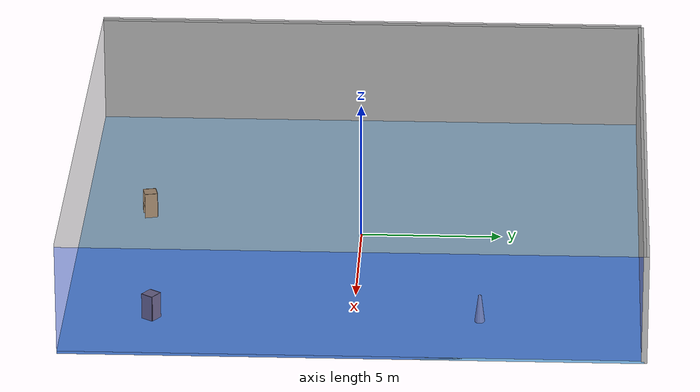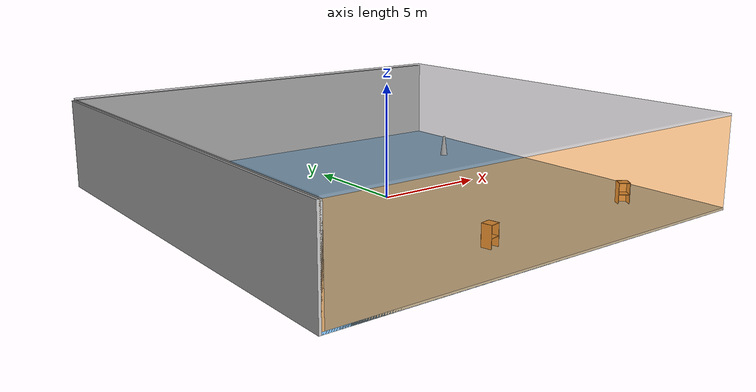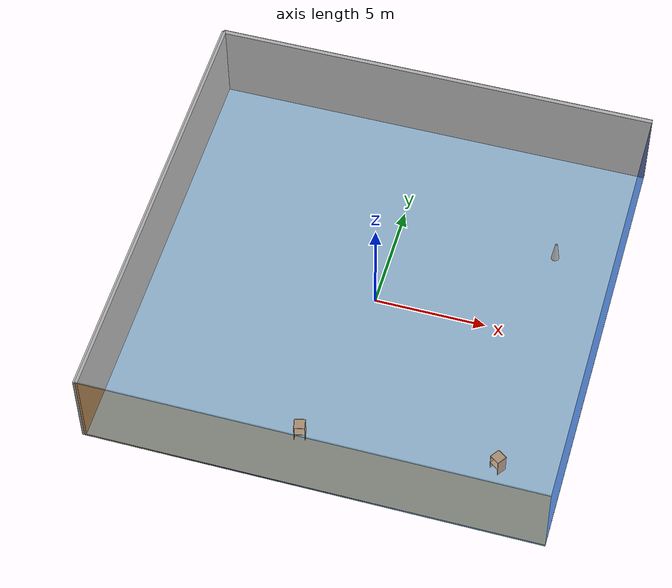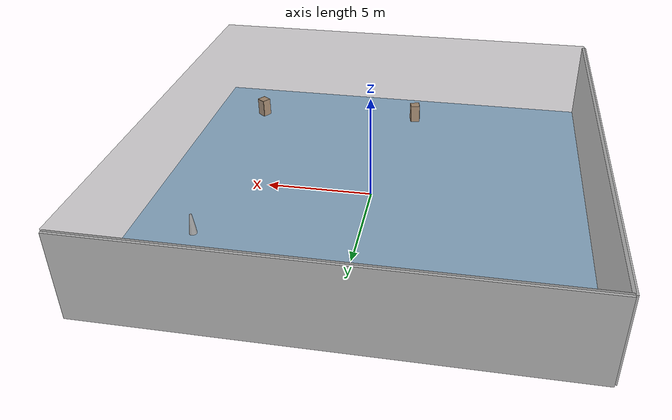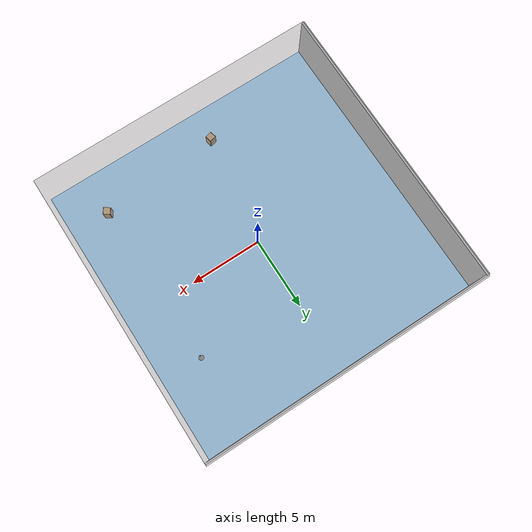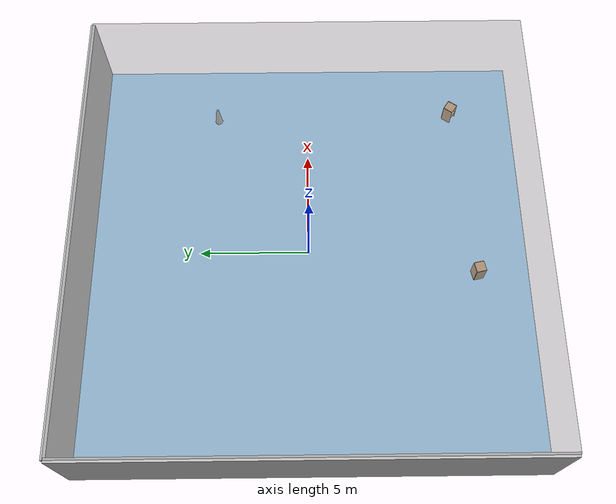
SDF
<sdf version="1.4">
 <world name="default">
  <physics type="ode">
   <max_step_size>0.001</max_step_size>
   <real_time_factor>1</real_time_factor>
   <real_time_update_rate>1000</real_time_update_rate>
   <gravity>0 0 -9.8</gravity>
  </physics>
  <scene><ambient>0.4 0.4 0.4 1</ambient><background>0.7 0.7 0.7 1</background><shadows>1</shadows></scene>
  <model name="Surrounding">
   <static>1</static>
   <link name="Ceiling">
    <collision name="Ceiling_Collision"><geometry><box><size>20 20 0.1</size></box></geometry></collision>
    <visual name="Ceiling_Visual">
     <geometry><box><size>20 20 0.1</size></box></geometry>
     <material>
      <script><uri>file://media/materials/scripts/gazebo.material</uri><name>Gazebo/GreyTransparent</name></script>
     </material>
    </visual>
    <pose>0 0 4.05 0 0 0</pose>
   </link>
   <link name="Wall_South">
    <collision name="Wall_South_Collision">
     <geometry><box><size>20 0 4</size></box></geometry>
     <pose>0 0 2 0 -0 0</pose>
    </collision>
    <visual name="Wall_South_Visual">
     <pose>0 0 2 0 -0 0</pose>
     <geometry><box><size>20 0 4</size></box></geometry>
     <material>
      <script>
       <uri>file://media/materials/scripts/gazebo.material</uri>
       <name>Gazebo/OrangeTransparent</name>
      </script>
     </material>
    </visual>
    <velocity_decay><linear>0</linear><angular>0</angular></velocity_decay>
    <pose>0 -10 0 0 -0 0</pose>
   </link>
   <link name="Wall_East">
    <collision name="Wall_21_Collision">
     <geometry><box><size>20 0 4</size></box></geometry>
     <pose>0 0 2 0 -0 0</pose>
    </collision>
    <visual name="Wall_21_Visual">
     <pose>0 0 2 0 -0 0</pose>
     <geometry><box><size>20 0 4</size></box></geometry>
     <material>
      <script><uri>file://media/materials/scripts/gazebo.material</uri><name>Gazebo/BlueTransparent</name></script>
     </material>
    </visual>
    <velocity_decay><linear>0</linear><angular>0</angular></velocity_decay>
    <pose>10 0 0 0 -0 1.5708</pose>
   </link>
   <link name="Wall_North">
    <collision name="Wall_22_Collision">
     <geometry><box><size>20 0.2 4</size></box></geometry>
     <pose>0 0 2 0 -0 0</pose>
    </collision>
    <visual name="Wall_22_Visual">
     <pose>0 0 2 0 -0 0</pose>
     <geometry><box><size>20 0.2 4</size></box></geometry>
     <material>
      <script><uri>file://media/materials/scripts/gazebo.material</uri><name>Gazebo/CloudySky</name></script>
     </material>
    </visual>
    <velocity_decay><linear>0</linear><angular>0</angular></velocity_decay>
    <pose>0 10 0 0 -0 0</pose>
   </link>
   <link name="Wall_West">
    <collision name="Wall_23_Collision">
     <geometry><box><size>20 0.2 4</size></box></geometry>
     <pose>0 0 2 0 -0 0</pose>
    </collision>
    <visual name="Wall_23_Visual">
     <pose>0 0 2 0 -0 0</pose>
     <geometry><box><size>20 0.2 4</size></box></geometry>
     <material>
      <script><uri>file://media/materials/scripts/gazebo.material</uri><name>Gazebo/PioneerBody</name></script>
     </material>
    </visual>
    <velocity_decay><linear>0</linear><angular>0</angular></velocity_decay>
    <pose>-10 0 0 0 0 -1.5708</pose>
   </link>
   <link name="Ground_link">
    <collision name="collision">
     <pose>0 0 .05 0 -0 0</pose>
     <geometry><box><size>20 20 0.1</size></box></geometry>
    </collision>
    <visual name="visual">
     <pose>0 0 .05 0 -0 0</pose>
     <geometry><box><size>20 20 0.1</size></box></geometry>
     <material>
      <script><uri>file://media/materials/scripts/gazebo.material</uri><name>Gazebo/SkyBlue</name></script>
     </material>
    </visual>
   </link>
   <static>1</static>
  </model>
  <spherical_coordinates>
   <surface_model>EARTH_WGS84</surface_model>
   <latitude_deg>0</latitude_deg>
   <longitude_deg>0</longitude_deg>
   <elevation>0</elevation>
   <heading_deg>0</heading_deg>
  </spherical_coordinates>
  <light name="lightball_0" type="diffuse">
   <diffuse>0.8 0.8 0.8 1</diffuse>
   <specular>0.2 0.2 0.2 1</specular>
   <attenuation>
    <range>100</range>
    <constant>0.7</constant>
    <linear>0.01</linear>
    <quadratic>0.001</quadratic>
   </attenuation>
   <direction>-0.5 0.1 -0.9</direction>
   <pose>3.7379480289 -5.03767738782 1.55319883815 0 0 0</pose>
  </light>
  <light name="lightball_1" type="diffuse">
   <diffuse>0.8 0.8 0.8 1</diffuse>
   <specular>0.2 0.2 0.2 1</specular>
   <attenuation>
    <range>100</range>
    <constant>0.7</constant>
    <linear>0.01</linear>
    <quadratic>0.001</quadratic>
   </attenuation>
   <direction>-0.5 0.1 -0.9</direction>
   <pose>1.18970509917 -5.04099150647 2.90235241004 0 0 0</pose>
  </light>
  <light name="lightball_2" type="diffuse">
   <diffuse>0.8 0.8 0.8 1</diffuse>
   <specular>0.2 0.2 0.2 1</specular>
   <attenuation>
    <range>100</range>
    <constant>0.7</constant>
    <linear>0.01</linear>
    <quadratic>0.001</quadratic>
   </attenuation>
   <direction>-0.5 0.1 -0.9</direction>
   <pose>6.8958138242 8.33027312826 1.69075211085 0 0 0</pose>
  </light>
  <light name="lightball_3" type="diffuse">
   <diffuse>0.8 0.8 0.8 1</diffuse>
   <specular>0.2 0.2 0.2 1</specular>
   <attenuation>
    <range>100</range>
    <constant>0.7</constant>
    <linear>0.01</linear>
    <quadratic>0.001</quadratic>
   </attenuation>
   <direction>-0.5 0.1 -0.9</direction>
   <pose>2.36180687395 -2.0042746422 3.51247417243 0 0 0</pose>
  </light>
  <light name="lightball_4" type="diffuse">
   <diffuse>0.8 0.8 0.8 1</diffuse>
   <specular>0.2 0.2 0.2 1</specular>
   <attenuation>
    <range>100</range>
    <constant>0.7</constant>
    <linear>0.01</linear>
    <quadratic>0.001</quadratic>
   </attenuation>
   <direction>-0.5 0.1 -0.9</direction>
   <pose>0.306053161061 -2.05474830493 2.30338118727 0 0 0</pose>
  </light>
  <light name="lightball_5" type="diffuse">
   <diffuse>0.8 0.8 0.8 1</diffuse>
   <specular>0.2 0.2 0.2 1</specular>
   <attenuation>
    <range>100</range>
    <constant>0.7</constant>
    <linear>0.01</linear>
    <quadratic>0.001</quadratic>
   </attenuation>
   <direction>-0.5 0.1 -0.9</direction>
   <pose>-1.85291861863 6.98151951651 0.712160921288 0 0 0</pose>
  </light>
  <light name="lightball_6" type="diffuse">
   <diffuse>0.8 0.8 0.8 1</diffuse>
   <specular>0.2 0.2 0.2 1</specular>
   <attenuation>
    <range>100</range>
    <constant>0.7</constant>
    <linear>0.01</linear>
    <quadratic>0.001</quadratic>
   </attenuation>
   <direction>-0.5 0.1 -0.9</direction>
   <pose>2.21058703188 -6.33939455695 1.77370531914 0 0 0</pose>
  </light>
  <include><uri>model://cabinet</uri><pose>-1.18044799035 -7.64529419568 0 0 0 1.78419311594</pose></include>
  <include><uri>model://cabinet</uri><pose>7.24470529946 -6.97164923926 0 0 0 0.962254175494</pose></include>
  <include>
   <uri>model://construction_cone</uri>
   <pose>7.11332178331 4.36221818185 0 0 0 2.70940079932</pose>
  </include>
 </world>
</sdf>

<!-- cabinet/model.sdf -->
<sdf version="1.5">
  <model name="cabinet">
    <static>true</static>
    <link name="cabinet_bottom_plate">
      <inertial>
        <pose>0 0 -1 0 0 0</pose>
        <inertia>
          <ixx>2.050000</ixx>
          <ixy>0</ixy>
          <ixz>0</ixz>
          <iyy>2.050000</iyy>
          <iyz>0</iyz>
          <izz>2.050000</izz>
        </inertia>
        <mass>25.000000</mass>
      </inertial>
      <collision name="cabinet_bottom_plate_geom">
        <pose>0 0 0.010000 0 0 0</pose>
        <geometry>
          <box>
            <size>0.450000 0.450000 0.020000</size>
          </box>
        </geometry>
      </collision>
      <visual name="cabinet_bottom_plate_geom_visual">
        <pose>0 0 0.010000 0 0 0</pose>
        <geometry>
          <box>
            <size>0.450000 0.450000 0.020000</size>
          </box>
        </geometry>
        <material>
          <script>
            <uri>model://media/materials/scripts/gazebo.material</uri>
            <name>Gazebo/Wood</name>
          </script>
        </material>
      </visual>
      <collision name="cabinet_bottom_plate_geom_cabinet_back_plate">
        <pose>0.235000 0 0.510000 0 0 0</pose>
        <geometry>
          <box>
            <size>0.020000 0.450000 1.020000</size>
          </box>
        </geometry>
      </collision>
      <visual name="cabinet_bottom_plate_geom_cabinet_back_plate_visual">
        <pose>0.235000 0 0.510000 0 0 0</pose>
        <geometry>
          <box>
            <size>0.020000 0.450000 1.020000</size>
          </box>
        </geometry>
        <material>
          <script>
            <uri>model://media/materials/scripts/gazebo.material</uri>
            <name>Gazebo/Wood</name>
          </script>
        </material>
      </visual>
      <collision name="cabinet_bottom_plate_geom_cabinet_left_plate">
        <pose>0 0.235000 0.510000 0 0 0</pose>
        <geometry>
          <box>
            <size>0.450000 0.020000 1.020000</size>
          </box>
        </geometry>
      </collision>
      <visual name="cabinet_bottom_plate_geom_cabinet_left_plate_visual">
        <pose>0 0.235000 0.510000 0 0 0</pose>
        <geometry>
          <box>
            <size>0.450000 0.020000 1.020000</size>
          </box>
        </geometry>
        <material>
          <script>
            <uri>model://media/materials/scripts/gazebo.material</uri>
            <name>Gazebo/Wood</name>
          </script>
        </material>
      </visual>
      <collision name="cabinet_bottom_plate_geom_cabinet_middle_plate">
        <pose>0 0 0.510000 0 0 0</pose>
        <geometry>
          <box>
            <size>0.450000 0.450000 0.020000</size>
          </box>
        </geometry>
      </collision>
      <visual name="cabinet_bottom_plate_geom_cabinet_middle_plate_visual">
        <pose>0 0 0.510000 0 0 0</pose>
        <geometry>
          <box>
            <size>0.450000 0.450000 0.020000</size>
          </box>
        </geometry>
        <material>
          <script>
            <uri>model://media/materials/scripts/gazebo.material</uri>
            <name>Gazebo/Wood</name>
          </script>
        </material>
      </visual>
      <collision name="cabinet_bottom_plate_geom_cabinet_right_plate">
        <pose>0 -0.235000 0.510000 0 0 0</pose>
        <geometry>
          <box>
            <size>0.450000 0.020000 1.020000</size>
          </box>
        </geometry>
      </collision>
      <visual name="cabinet_bottom_plate_geom_cabinet_right_plate_visual">
        <pose>0 -0.235000 0.510000 0 0 0</pose>
        <geometry>
          <box>
            <size>0.450000 0.020000 1.020000</size>
          </box>
        </geometry>
        <material>
          <script>
            <uri>model://media/materials/scripts/gazebo.material</uri>
            <name>Gazebo/Wood</name>
          </script>
        </material>
      </visual>
      <collision name="cabinet_bottom_plate_geom_cabinet_top_plate">
        <pose>0 0 1.010000 0 0 0</pose>
        <geometry>
          <box>
            <size>0.450000 0.450000 0.020000</size>
          </box>
        </geometry>
      </collision>
      <visual name="cabinet_bottom_plate_geom_cabinet_top_plate_visual">
        <pose>0 0 1.010000 0 0 0</pose>
        <geometry>
          <box>
            <size>0.450000 0.450000 0.020000</size>
          </box>
        </geometry>
        <material>
          <script>
            <uri>model://media/materials/scripts/gazebo.material</uri>
            <name>Gazebo/Wood</name>
          </script>
        </material>
      </visual>
    </link>
  </model>
</sdf>

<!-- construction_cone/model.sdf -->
<sdf version="1.5">
  <model name="Construction Cone">
    <link name="link">
      <collision name="collision">
        <geometry>
          <mesh>
            <scale>10 10 10</scale>
            <uri>file://isr-testbed/construction_cone/meshes/construction_cone.dae</uri>
          </mesh>
        </geometry>
      </collision>
      <visual name="visual">
        <geometry>
          <mesh>
            <scale>10 10 10</scale>
            <uri>file://isr-testbed/construction_cone/meshes/construction_cone.dae</uri>
          </mesh>
        </geometry>
      </visual>
    </link>
  </model>
</sdf>
